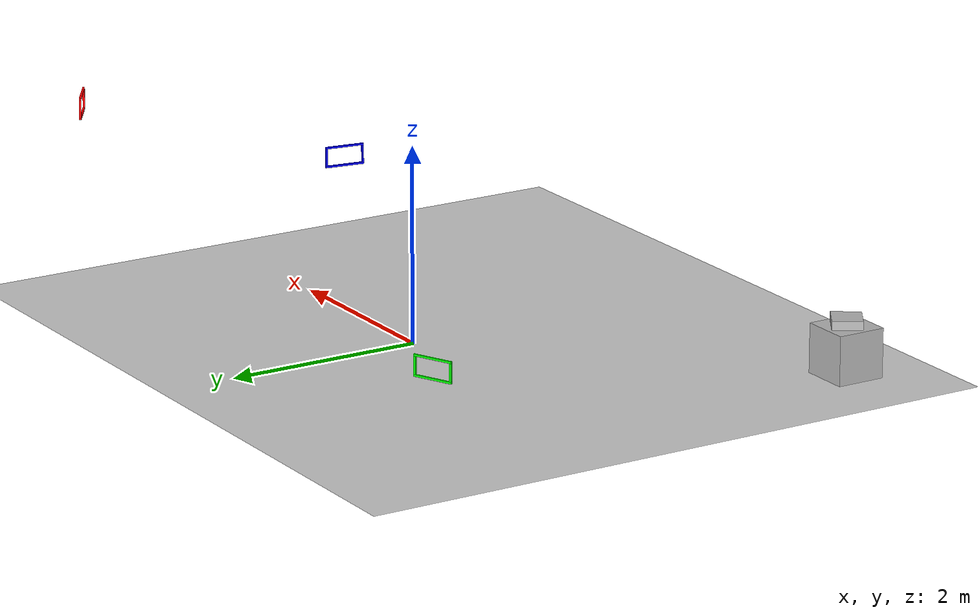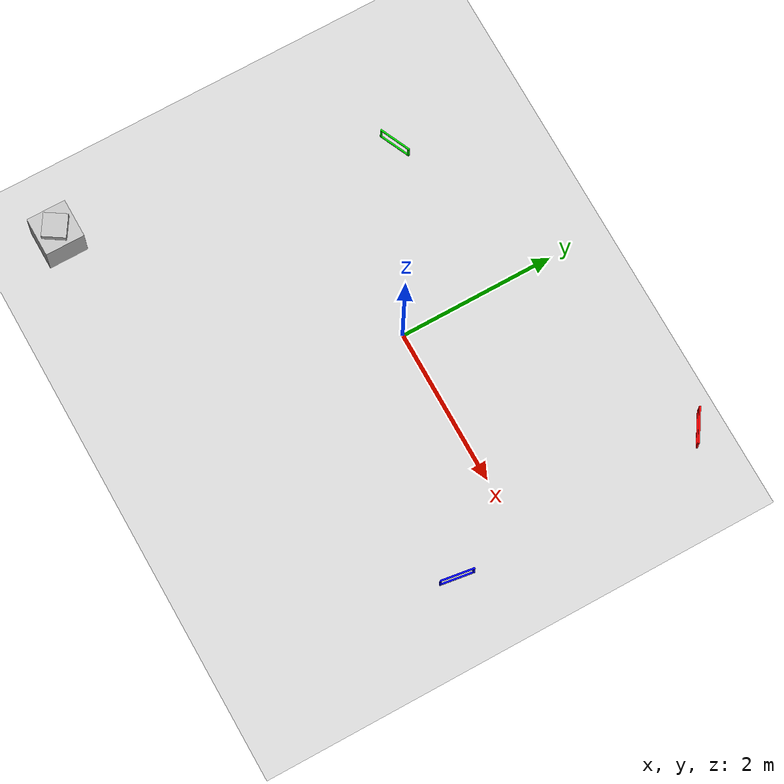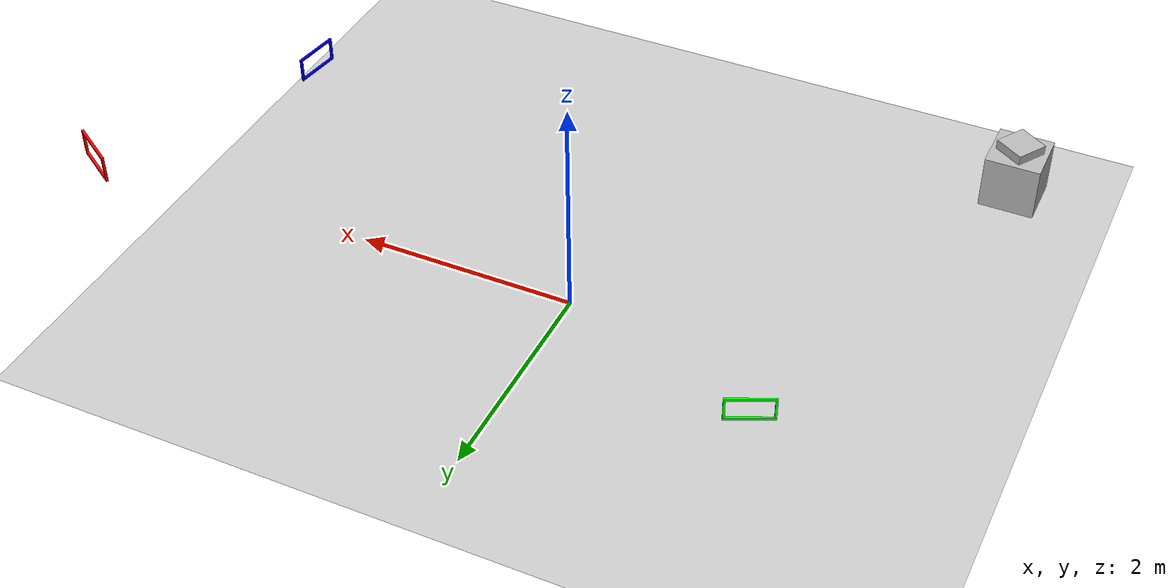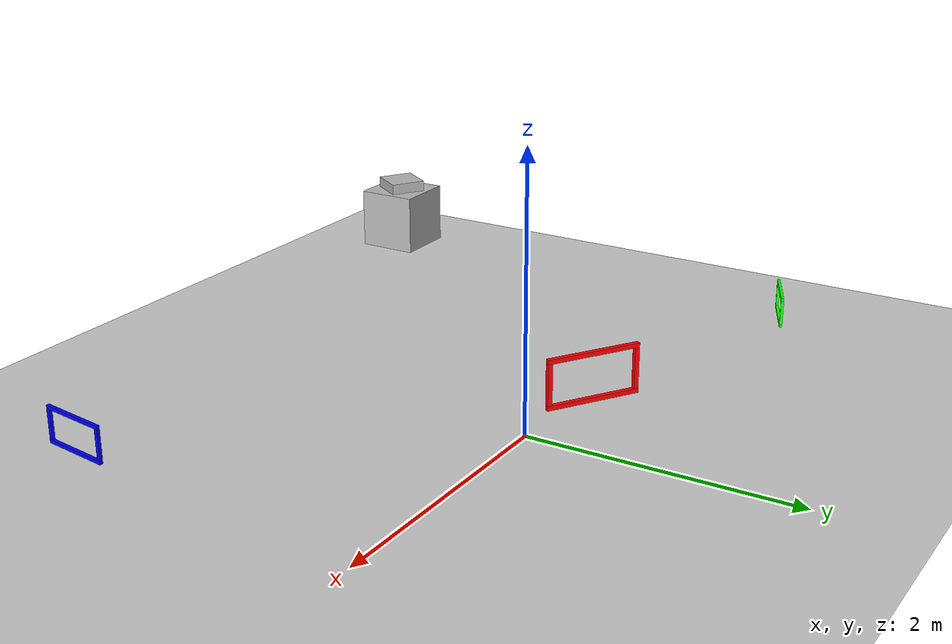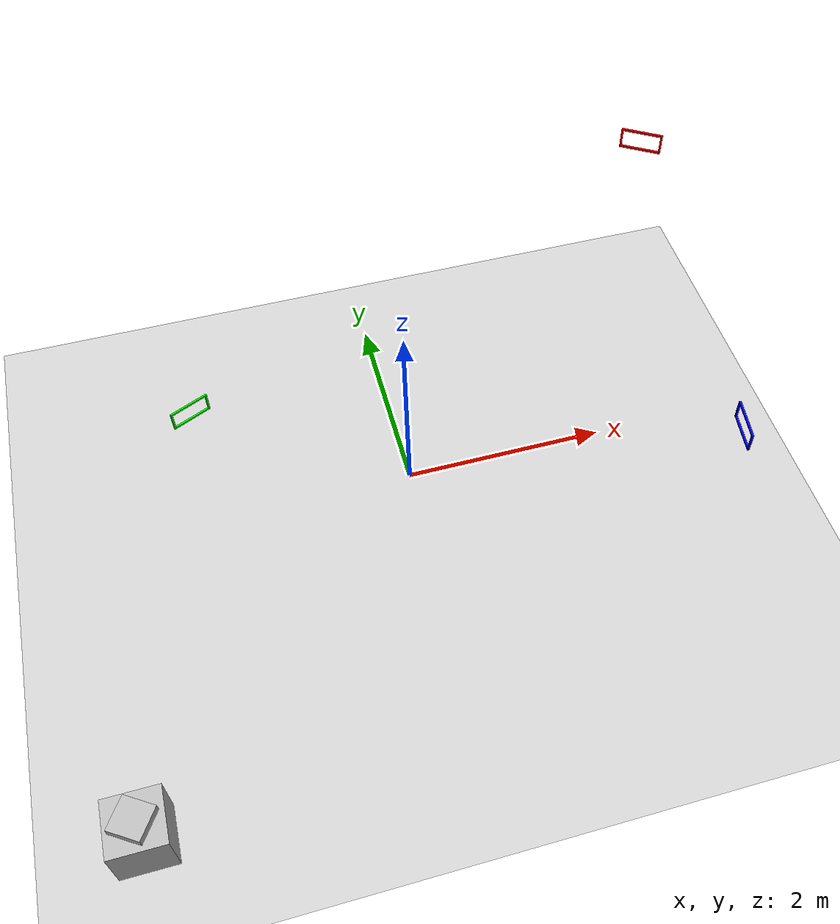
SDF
<sdf version="1.5">
 <world name="default">
  <scene><ambient>0.5 0.5 0.5 1.0</ambient><shadows>true</shadows></scene>
  <include><uri>model://sun</uri></include>
  <include><uri>model://ground_plane</uri></include>
  <spherical_coordinates>
   <surface_model>EARTH_WGS84</surface_model>
   <latitude_deg>0</latitude_deg>
   <longitude_deg>0</longitude_deg>
   <elevation>0</elevation>
   <heading_deg>0</heading_deg>
  </spherical_coordinates>
  <include>
   <name>abejorro</name>
   <uri>model://drone</uri>
   <pose>-3 -3 0.55 0 0 1</pose>
   <static>false</static>
   <plugin name="model_push" filename="/home/dronechallenge/repos/drone-challenge/drone_ros/plugins/build_new/libmodel_push.so">
    <id>1</id>
   </plugin>
  </include>
  <include><name>base_drone</name><uri>model://base_drone</uri><pose>-3 -3 0.26 0 0 0</pose></include>
  <include><name>frame_red</name><uri>model://frame_red</uri><pose>3 2 2 0 0 1</pose></include>
  <include><name>frame_green</name><uri>model://frame_green</uri><pose>-2 1 0.5 0 0 2</pose></include>
  <include><name>frame_blue</name><uri>model://frame_blue</uri><pose>3 -1 1 0 0 3</pose></include>
 </world>
</sdf>

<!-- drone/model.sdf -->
<sdf version="1.9">
  <model name="drone">
    <pose>0 0 0.5 0 0 0</pose>
    <link name="base_link">
      <inertial>
        <mass>1.0</mass>
        <inertia>
          <ixx>0.002</ixx><iyy>0.002</iyy><izz>0.003</izz>
          <ixy>0</ixy><ixz>0</ixz><iyz>0</iyz>
        </inertia>
      </inertial>
      <collision name="col">
        <geometry><box><size>0.3 0.3 0.1</size></box></geometry>
      </collision>
      <visual name="vis">
        <geometry><box><size>0.3 0.3 0.1</size></box></geometry>
      </visual>
    </link>

    <plugin name="lin_vel" filename="gz-sim-linear-velocity-control-system">
      <topic>/model/drone/cmd_vel</topic>
      <use_world_frame>false</use_world_frame>
      <limit>3.0</limit>
    </plugin>
    <plugin name="ang_vel" filename="gz-sim-angular-velocity-control-system">
      <topic>/model/drone/cmd_vel</topic>
      <use_world_frame>false</use_world_frame>
      <limit>2.0</limit>
    </plugin>
    <plugin name="odom_pub" filename="gz-sim-odometry-publisher-system">
      <frame_id>world</frame_id>
      <child_frame_id>drone/base_link</child_frame_id>
      <topic>/model/drone/odometry</topic>
      <publish_velocity>true</publish_velocity>
    </plugin>
  </model>
</sdf>

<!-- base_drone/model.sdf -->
<sdf version="1.5">

	<model name="base_drone">
	  <static>true</static>
	  <link name="link">

	    <collision name="collision">

		    <geometry>
		      <box>
		        <size>0.5 0.5 0.50</size>
		      </box>
		    </geometry>

        <surface>
          <friction>
            <ode>
              <mu>100.0</mu>
              <mu2>50.0</mu2>
              <slip1>0.0</slip1>
              <slip2>0.0</slip2>
            </ode>
          </friction>
        </surface>

	    </collision>

      <visual name="visual">
		    <geometry>
		      <box>
		        <size>0.5 0.5 0.50</size>
		      </box>
		    </geometry>
	    </visual>

	  </link>
	</model>

</sdf>

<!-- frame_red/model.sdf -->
<sdf version="1.5">
<model name="frame_red">

<static>true</static>

<link name='framelink'>
    <!-- Marco de 40x20 cms. Borde de 3cms. -->

    <visual name='up'>
        <pose>0 0 0.10 0 0 0</pose>
        <geometry>
          <box>
            <size>0.02 0.42 0.02</size>
          </box>
        </geometry>
        <material>
          <ambient>1 0 0 1</ambient>
          <diffuse>1 0 0 1</diffuse>
        </material>
    </visual>

    <collision name='up_c'>
        <pose>0 0 0.10 0 0 0</pose>
        <geometry>
          <box>
            <size>0.02 0.42 0.02</size>
          </box>
        </geometry>
        <surface>
          <friction>
            <ode>
              <mu>0.1</mu>
              <mu2>0.2</mu2>
              <slip1>1.0</slip1>
              <slip2>1.0</slip2>
            </ode>
          </friction>
        </surface>
    </collision>

    <visual name='down'>
        <pose>0 0 -0.10 0 0 0</pose>
        <geometry>
          <box>
            <size>0.02 0.42 0.02</size>
          </box>
        </geometry>
        <material>
          <ambient>1 0 0 1</ambient>
          <diffuse>1 0 0 1</diffuse>
        </material>
    </visual>

    <collision name='down_c'>
        <pose>0 0 -0.10 0 0 0</pose>
        <geometry>
          <box>
            <size>0.02 0.42 0.02</size>
          </box>
        </geometry>
        <surface>
          <friction>
            <ode>
              <mu>0.1</mu>
              <mu2>0.2</mu2>
              <slip1>1.0</slip1>
              <slip2>1.0</slip2>
            </ode>
          </friction>
        </surface>
    </collision>

    <visual name='left'>
        <pose>0 -0.20 0 0 0 0</pose>
        <geometry>
          <box>
            <size>0.02 0.02 0.18</size>
          </box>
        </geometry>
        <material>
          <ambient>1 0 0 1</ambient>
          <diffuse>1 0 0 1</diffuse>
        </material>
    </visual>

    <collision name='left_c'>
        <pose>0 -0.20 0 0 0 0</pose>
        <geometry>
          <box>
            <size>0.02 0.02 0.18</size>
          </box>
        </geometry>
        <surface>
          <friction>
            <ode>
              <mu>0.1</mu>
              <mu2>0.2</mu2>
              <slip1>1.0</slip1>
              <slip2>1.0</slip2>
            </ode>
          </friction>
        </surface>
    </collision>

    <visual name='right'>
        <pose>0 0.20 0 0 0 0</pose>
        <geometry>
          <box>
            <size>0.02 0.02 0.18</size>
          </box>
        </geometry>
        <material>
          <ambient>1 0 0 1</ambient>
          <diffuse>1 0 0 1</diffuse>
        </material>
    </visual>

    <collision name='right_c'>
        <pose>0 0.20 0 0 0 0</pose>
        <geometry>
          <box>
            <size>0.02 0.02 0.18</size>
          </box>
        </geometry>
        <surface>
          <friction>
            <ode>
              <mu>0.1</mu>
              <mu2>0.2</mu2>
              <slip1>1.0</slip1>
              <slip2>1.0</slip2>
            </ode>
          </friction>
        </surface>
    </collision>

</link>

</model>

</sdf>

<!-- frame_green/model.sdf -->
<sdf version="1.5">
<model name="frame_green">

<static>true</static>

<link name='framelink'>
    <!-- Marco de 40x20 cms. Borde de 3cms. -->

    <visual name='up'>
        <pose>0 0 0.10 0 0 0</pose>
        <geometry>
          <box>
            <size>0.02 0.42 0.02</size>
          </box>
        </geometry>
        <material>
          <ambient>0 1 0 1</ambient>
          <diffuse>0 1 0 1</diffuse>
        </material>
    </visual>

    <collision name='up_c'>
        <pose>0 0 0.10 0 0 0</pose>
        <geometry>
          <box>
            <size>0.02 0.42 0.02</size>
          </box>
        </geometry>
        <surface>
          <friction>
            <ode>
              <mu>0.1</mu>
              <mu2>0.2</mu2>
              <slip1>1.0</slip1>
              <slip2>1.0</slip2>
            </ode>
          </friction>
        </surface>
    </collision>

    <visual name='down'>
        <pose>0 0 -0.10 0 0 0</pose>
        <geometry>
          <box>
            <size>0.02 0.42 0.02</size>
          </box>
        </geometry>
        <material>
          <ambient>0 1 0 1</ambient>
          <diffuse>0 1 0 1</diffuse>
        </material>
    </visual>

    <collision name='down_c'>
        <pose>0 0 -0.10 0 0 0</pose>
        <geometry>
          <box>
            <size>0.02 0.42 0.02</size>
          </box>
        </geometry>
        <surface>
          <friction>
            <ode>
              <mu>0.1</mu>
              <mu2>0.2</mu2>
              <slip1>1.0</slip1>
              <slip2>1.0</slip2>
            </ode>
          </friction>
        </surface>
    </collision>

    <visual name='left'>
        <pose>0 -0.20 0 0 0 0</pose>
        <geometry>
          <box>
            <size>0.02 0.02 0.18</size>
          </box>
        </geometry>
        <material>
          <ambient>0 1 0 1</ambient>
          <diffuse>0 1 0 1</diffuse>
        </material>
    </visual>

    <collision name='left_c'>
        <pose>0 -0.20 0 0 0 0</pose>
        <geometry>
          <box>
            <size>0.02 0.02 0.18</size>
          </box>
        </geometry>
        <surface>
          <friction>
            <ode>
              <mu>0.1</mu>
              <mu2>0.2</mu2>
              <slip1>1.0</slip1>
              <slip2>1.0</slip2>
            </ode>
          </friction>
        </surface>
    </collision>

    <visual name='right'>
        <pose>0 0.20 0 0 0 0</pose>
        <geometry>
          <box>
            <size>0.02 0.02 0.18</size>
          </box>
        </geometry>
        <material>
          <ambient>0 1 0 1</ambient>
          <diffuse>0 1 0 1</diffuse>
        </material>
    </visual>

    <collision name='right_c'>
        <pose>0 0.20 0 0 0 0</pose>
        <geometry>
          <box>
            <size>0.02 0.02 0.18</size>
          </box>
        </geometry>
        <surface>
          <friction>
            <ode>
              <mu>0.1</mu>
              <mu2>0.2</mu2>
              <slip1>1.0</slip1>
              <slip2>1.0</slip2>
            </ode>
          </friction>
        </surface>
    </collision>

</link>

</model>

</sdf>

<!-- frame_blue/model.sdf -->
<sdf version="1.5">
<model name="frame_blue">

<static>true</static>

<link name='framelink'>
    <!-- Marco de 40x20 cms. Borde de 3cms. -->

    <visual name='up'>
        <pose>0 0 0.10 0 0 0</pose>
        <geometry>
          <box>
            <size>0.02 0.42 0.02</size>
          </box>
        </geometry>
        <material>
          <ambient>0 0 1 1</ambient>
          <diffuse>0 0 1 1</diffuse>
        </material>
    </visual>

    <collision name='up_c'>
        <pose>0 0 0.10 0 0 0</pose>
        <geometry>
          <box>
            <size>0.02 0.42 0.02</size>
          </box>
        </geometry>
        <surface>
          <friction>
            <ode>
              <mu>0.1</mu>
              <mu2>0.2</mu2>
              <slip1>1.0</slip1>
              <slip2>1.0</slip2>
            </ode>
          </friction>
        </surface>
    </collision>

    <visual name='down'>
        <pose>0 0 -0.10 0 0 0</pose>
        <geometry>
          <box>
            <size>0.02 0.42 0.02</size>
          </box>
        </geometry>
        <material>
          <ambient>0 0 1 1</ambient>
          <diffuse>0 0 1 1</diffuse>
        </material>
    </visual>

    <collision name='down_c'>
        <pose>0 0 -0.10 0 0 0</pose>
        <geometry>
          <box>
            <size>0.02 0.42 0.02</size>
          </box>
        </geometry>
        <surface>
          <friction>
            <ode>
              <mu>0.1</mu>
              <mu2>0.2</mu2>
              <slip1>1.0</slip1>
              <slip2>1.0</slip2>
            </ode>
          </friction>
        </surface>
    </collision>

    <visual name='left'>
        <pose>0 -0.20 0 0 0 0</pose>
        <geometry>
          <box>
            <size>0.02 0.02 0.18</size>
          </box>
        </geometry>
        <material>
          <ambient>0 0 1 1</ambient>
          <diffuse>0 0 1 1</diffuse>
        </material>
    </visual>

    <collision name='left_c'>
        <pose>0 -0.20 0 0 0 0</pose>
        <geometry>
          <box>
            <size>0.02 0.02 0.18</size>
          </box>
        </geometry>
        <surface>
          <friction>
            <ode>
              <mu>0.1</mu>
              <mu2>0.2</mu2>
              <slip1>1.0</slip1>
              <slip2>1.0</slip2>
            </ode>
          </friction>
        </surface>
    </collision>

    <visual name='right'>
        <pose>0 0.20 0 0 0 0</pose>
        <geometry>
          <box>
            <size>0.02 0.02 0.18</size>
          </box>
        </geometry>
        <material>
          <ambient>0 0 1 1</ambient>
          <diffuse>0 0 1 1</diffuse>
        </material>
    </visual>

    <collision name='right_c'>
        <pose>0 0.20 0 0 0 0</pose>
        <geometry>
          <box>
            <size>0.02 0.02 0.18</size>
          </box>
        </geometry>
        <surface>
          <friction>
            <ode>
              <mu>0.1</mu>
              <mu2>0.2</mu2>
              <slip1>1.0</slip1>
              <slip2>1.0</slip2>
            </ode>
          </friction>
        </surface>
    </collision>

</link>

</model>

</sdf>
